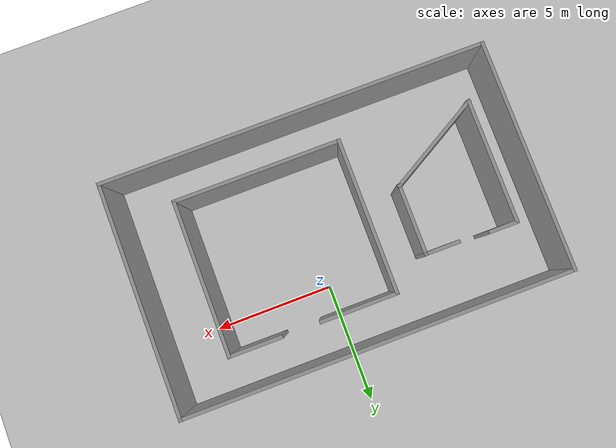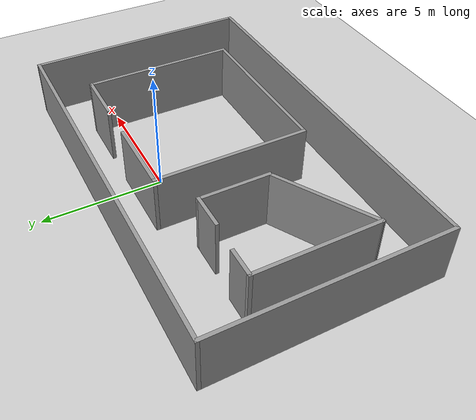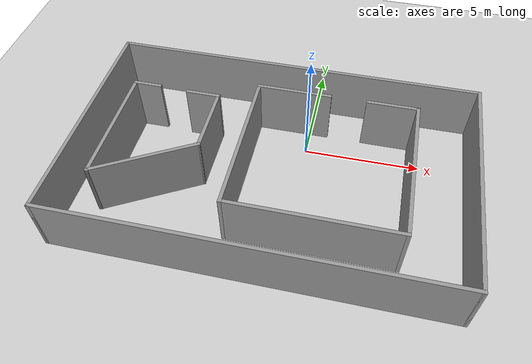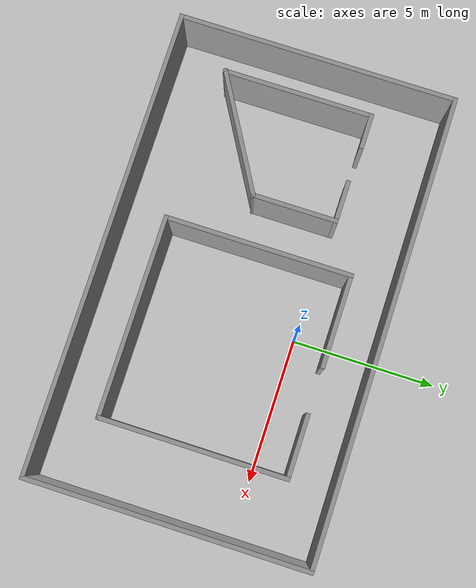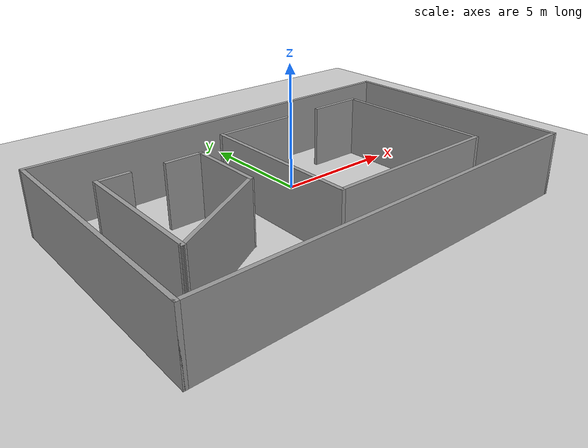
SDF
<sdf version="1.6">
 <world name="default">
  <light name="sun" type="directional">
   <pose>0 0 10 0 -0 0</pose>
   <diffuse>0.8 0.8 0.8 1</diffuse>
   <specular>0.2 0.2 0.2 1</specular>
   <attenuation>
    <range>1000</range>
    <constant>0.9</constant>
    <linear>0.01</linear>
    <quadratic>0.001</quadratic>
   </attenuation>
   <direction>-0.5 0.1 -0.9</direction>
  </light>
  <model name="ground_plane">
   <static>1</static>
   <link name="link">
    <collision name="collision">
     <geometry><plane><normal>0 0 1</normal><size>100 100</size></plane></geometry>
     <surface>
      <contact><collide_bitmask>65535</collide_bitmask></contact>
      <friction><ode><mu>100</mu><mu2>50</mu2></ode></friction>
     </surface>
    </collision>
    <visual name="visual">
     <cast_shadows>0</cast_shadows>
     <geometry><plane><normal>0 0 1</normal><size>100 100</size></plane></geometry>
     <material>
      <script><uri>file://media/materials/scripts/gazebo.material</uri><name>Gazebo/Grey</name></script>
     </material>
    </visual>
   </link>
  </model>
  <gravity>0 0 -9.8</gravity>
  <magnetic_field>6e-06 2.3e-05 -4.2e-05</magnetic_field>
  <atmosphere type="adiabatic"/>
  <physics name="default_physics" default="0" type="ode">
   <max_step_size>0.001</max_step_size>
   <real_time_factor>1</real_time_factor>
   <real_time_update_rate>1000</real_time_update_rate>
  </physics>
  <scene><ambient>0.4 0.4 0.4 1</ambient><background>0.7 0.7 0.7 1</background><shadows>1</shadows></scene>
  <spherical_coordinates>
   <surface_model>EARTH_WGS84</surface_model>
   <latitude_deg>0</latitude_deg>
   <longitude_deg>0</longitude_deg>
   <elevation>0</elevation>
   <heading_deg>0</heading_deg>
  </spherical_coordinates>
  <model name="room1.world">
   <pose>-1.04592 -2.10203 0 0 -0 0</pose>
   <link name="Wall_14">
    <collision name="Wall_14_Collision">
     <geometry><box><size>6.5 0.15 2.5</size></box></geometry>
     <pose>0 0 1.25 0 -0 0</pose>
    </collision>
    <visual name="Wall_14_Visual">
     <pose>0 0 1.25 0 -0 0</pose>
     <geometry><box><size>6.5 0.15 2.5</size></box></geometry>
     <material>
      <script><uri>file://media/materials/scripts/gazebo.material</uri><name>Gazebo/Grey</name></script>
      <ambient>1 1 1 1</ambient>
     </material>
     <meta><layer>0</layer></meta>
    </visual>
    <pose>-1.32015 0.055588 0 0 -0 -1.5708</pose>
   </link>
   <link name="Wall_15">
    <collision name="Wall_15_Collision">
     <geometry><box><size>7 0.15 2.5</size></box></geometry>
     <pose>0 0 1.25 0 -0 0</pose>
    </collision>
    <visual name="Wall_15_Visual">
     <pose>0 0 1.25 0 -0 0</pose>
     <geometry><box><size>7 0.15 2.5</size></box></geometry>
     <material>
      <script><uri>file://media/materials/scripts/gazebo.material</uri><name>Gazebo/Grey</name></script>
      <ambient>1 1 1 1</ambient>
     </material>
     <meta><layer>0</layer></meta>
    </visual>
    <pose>2.10485 -3.11941 0 0 -0 0</pose>
   </link>
   <link name="Wall_16">
    <collision name="Wall_16_Collision">
     <geometry><box><size>6.5 0.15 2.5</size></box></geometry>
     <pose>0 0 1.25 0 -0 0</pose>
    </collision>
    <visual name="Wall_16_Visual">
     <pose>0 0 1.25 0 -0 0</pose>
     <geometry><box><size>6.5 0.15 2.5</size></box></geometry>
     <material>
      <script><uri>file://media/materials/scripts/gazebo.material</uri><name>Gazebo/Grey</name></script>
      <ambient>1 1 1 1</ambient>
     </material>
     <meta><layer>0</layer></meta>
    </visual>
    <pose>5.52985 0.055588 0 0 -0 1.5708</pose>
   </link>
   <link name="Wall_17">
    <collision name="Wall_17_Collision">
     <geometry><box><size>2.25 0.15 2.5</size></box></geometry>
     <pose>0 0 1.25 0 -0 0</pose>
    </collision>
    <visual name="Wall_17_Visual">
     <pose>0 0 1.25 0 -0 0</pose>
     <geometry><box><size>2.25 0.15 2.5</size></box></geometry>
     <material>
      <script><uri>file://media/materials/scripts/gazebo.material</uri><name>Gazebo/Grey</name></script>
      <ambient>1 1 1 1</ambient>
     </material>
     <meta><layer>0</layer></meta>
    </visual>
    <pose>4.47985 3.23059 0 0 -0 3.14159</pose>
   </link>
   <link name="Wall_19">
    <collision name="Wall_19_Collision">
     <geometry><box><size>3.25 0.15 2.5</size></box></geometry>
     <pose>0 0 1.25 0 -0 0</pose>
    </collision>
    <visual name="Wall_19_Visual">
     <pose>0 0 1.25 0 -0 0</pose>
     <geometry><box><size>3.25 0.15 2.5</size></box></geometry>
     <material>
      <script><uri>file://media/materials/scripts/gazebo.material</uri><name>Gazebo/Grey</name></script>
      <ambient>1 1 1 1</ambient>
     </material>
     <meta><layer>0</layer></meta>
    </visual>
    <pose>0.22985 3.23059 0 0 -0 0</pose>
   </link>
   <link name="Wall_2">
    <collision name="Wall_2_Collision">
     <geometry><box><size>9.75 0.15 2.5</size></box></geometry>
     <pose>0 0 1.25 0 -0 0</pose>
    </collision>
    <visual name="Wall_2_Visual">
     <pose>0 0 1.25 0 -0 0</pose>
     <geometry><box><size>9.75 0.15 2.5</size></box></geometry>
     <material>
      <script><uri>file://media/materials/scripts/gazebo.material</uri><name>Gazebo/Grey</name></script>
      <ambient>1 1 1 1</ambient>
     </material>
     <meta><layer>0</layer></meta>
    </visual>
    <pose>-8.05 0 0 0 -0 -1.5708</pose>
   </link>
   <link name="Wall_21">
    <collision name="Wall_21_Collision">
     <geometry><box><size>1.25 0.15 2.5</size></box></geometry>
     <pose>0 0 1.25 0 -0 0</pose>
    </collision>
    <visual name="Wall_21_Visual">
     <pose>0 0 1.25 0 -0 0</pose>
     <geometry><box><size>1.25 0.15 2.5</size></box></geometry>
     <material>
      <script><uri>file://media/materials/scripts/gazebo.material</uri><name>Gazebo/Grey</name></script>
      <ambient>1 1 1 1</ambient>
     </material>
     <meta><layer>0</layer></meta>
    </visual>
    <pose>-6.11679 2.29958 0 0 -0 0</pose>
   </link>
   <link name="Wall_23">
    <collision name="Wall_23_Collision">
     <geometry><box><size>1.5 0.15 2.5</size></box></geometry>
     <pose>0 0 1.25 0 -0 0</pose>
    </collision>
    <visual name="Wall_23_Visual">
     <pose>0 0 1.25 0 -0 0</pose>
     <geometry><box><size>1.5 0.15 2.5</size></box></geometry>
     <material>
      <script><uri>file://media/materials/scripts/gazebo.material</uri><name>Gazebo/Grey</name></script>
      <ambient>1 1 1 1</ambient>
     </material>
     <meta><layer>0</layer></meta>
    </visual>
    <pose>-3.57458 2.22458 0 0 -0 3.14159</pose>
   </link>
   <link name="Wall_3">
    <collision name="Wall_3_Collision">
     <geometry><box><size>16.25 0.15 2.5</size></box></geometry>
     <pose>0 0 1.25 0 -0 0</pose>
    </collision>
    <visual name="Wall_3_Visual">
     <pose>0 0 1.25 0 -0 0</pose>
     <geometry><box><size>16.25 0.15 2.5</size></box></geometry>
     <material>
      <script><uri>file://media/materials/scripts/gazebo.material</uri><name>Gazebo/Grey</name></script>
      <ambient>1 1 1 1</ambient>
     </material>
     <meta><layer>0</layer></meta>
    </visual>
    <pose>0 -4.8 0 0 -0 0</pose>
   </link>
   <link name="Wall_4">
    <collision name="Wall_4_Collision">
     <geometry><box><size>9.75 0.15 2.5</size></box></geometry>
     <pose>0 0 1.25 0 -0 0</pose>
    </collision>
    <visual name="Wall_4_Visual">
     <pose>0 0 1.25 0 -0 0</pose>
     <geometry><box><size>9.75 0.15 2.5</size></box></geometry>
     <material>
      <script><uri>file://media/materials/scripts/gazebo.material</uri><name>Gazebo/Grey</name></script>
      <ambient>1 1 1 1</ambient>
     </material>
     <meta><layer>0</layer></meta>
    </visual>
    <pose>8.05 0 0 0 -0 1.5708</pose>
   </link>
   <link name="Wall_5">
    <collision name="Wall_5_Collision">
     <geometry><box><size>16.25 0.15 2.5</size></box></geometry>
     <pose>0 0 1.25 0 -0 0</pose>
    </collision>
    <visual name="Wall_5_Visual">
     <pose>0 0 1.25 0 -0 0</pose>
     <geometry><box><size>16.25 0.15 2.5</size></box></geometry>
     <material>
      <script><uri>file://media/materials/scripts/gazebo.material</uri><name>Gazebo/Grey</name></script>
      <ambient>1 1 1 1</ambient>
     </material>
     <meta><layer>0</layer></meta>
    </visual>
    <pose>0 4.8 0 0 -0 3.14159</pose>
   </link>
   <link name="Wall_7">
    <collision name="Wall_7_Collision">
     <geometry><box><size>5.25 0.15 2.5</size></box></geometry>
     <pose>0 0 1.25 0 -0 0</pose>
    </collision>
    <visual name="Wall_7_Visual">
     <pose>0 0 1.25 0 -0 0</pose>
     <geometry><box><size>5.25 0.15 2.5</size></box></geometry>
     <material>
      <script><uri>file://media/materials/scripts/gazebo.material</uri><name>Gazebo/Grey</name></script>
      <ambient>1 1 1 1</ambient>
     </material>
     <meta><layer>0</layer></meta>
    </visual>
    <pose>-6.66679 -0.250419 0 0 -0 -1.5708</pose>
   </link>
   <link name="Wall_8">
    <collision name="Wall_8_Collision">
     <geometry><box><size>4.5 0.15 2.5</size></box></geometry>
     <pose>0 0 1.25 0 -0 0</pose>
    </collision>
    <visual name="Wall_8_Visual">
     <pose>0 0 1.25 0 -0 0</pose>
     <geometry><box><size>4.5 0.15 2.5</size></box></geometry>
     <material>
      <script><uri>file://media/materials/scripts/gazebo.material</uri><name>Gazebo/Grey</name></script>
      <ambient>1 1 1 1</ambient>
     </material>
     <meta><layer>0</layer></meta>
    </visual>
    <pose>-4.78318 -1.71292 0 0 -0 0.523599</pose>
   </link>
   <link name="Wall_9">
    <collision name="Wall_9_Collision">
     <geometry><box><size>3 0.15 2.5</size></box></geometry>
     <pose>0 0 1.25 0 -0 0</pose>
    </collision>
    <visual name="Wall_9_Visual">
     <pose>0 0 1.25 0 -0 0</pose>
     <geometry><box><size>3 0.15 2.5</size></box></geometry>
     <material>
      <script><uri>file://media/materials/scripts/gazebo.material</uri><name>Gazebo/Grey</name></script>
      <ambient>1 1 1 1</ambient>
     </material>
     <meta><layer>0</layer></meta>
    </visual>
    <pose>-2.89958 0.799581 0 0 -0 1.5708</pose>
   </link>
   <static>1</static>
  </model>
 </world>
</sdf>
